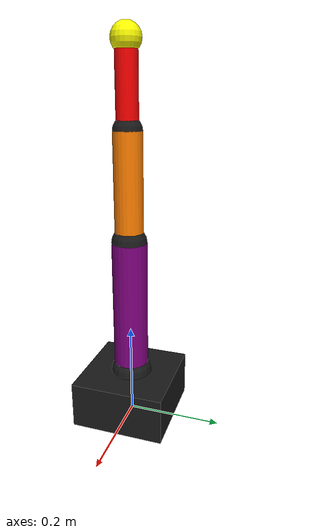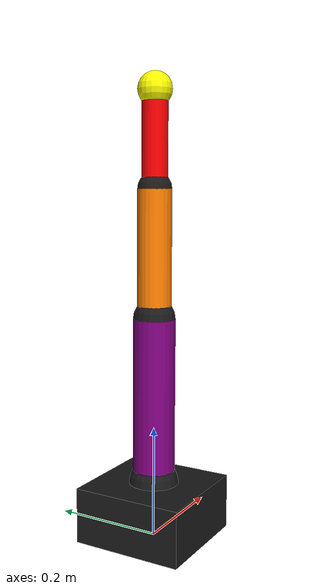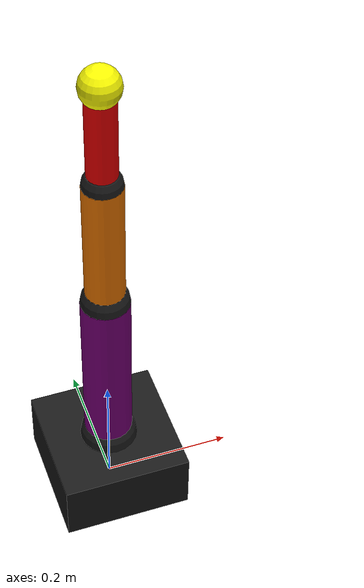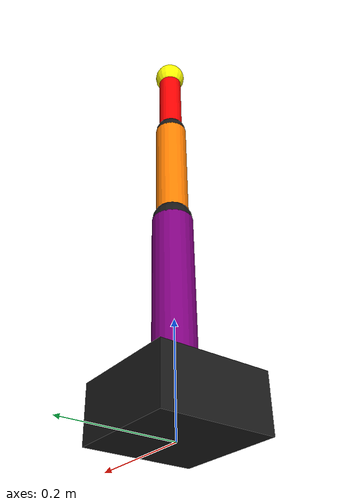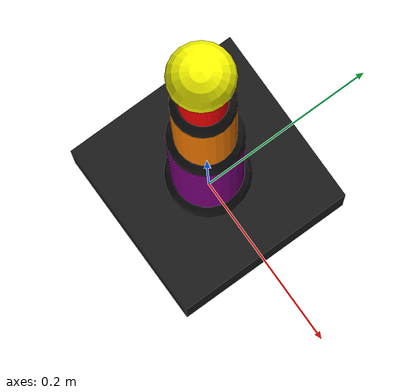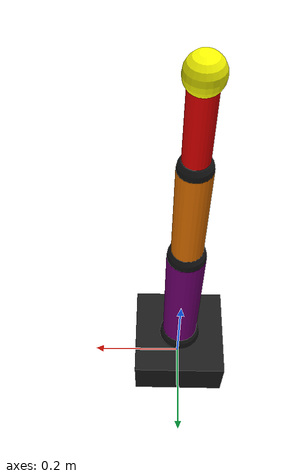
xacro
<?xml version="1.0"?>
<!--
  robot_arm.urdf.xacro
  ====================
  Main Xacro entry point for Practical 2: Standalone 3-DOF Robot Arm.
-->
<robot xmlns:xacro="http://www.ros.org/wiki/xacro" name="robot_arm">

    <xacro:include filename="common_properties.xacro" />
    <xacro:include filename="robot_arm_core_standalone.xacro" />

</robot>

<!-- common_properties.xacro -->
<robot xmlns:xacro="http://www.ros.org/wiki/xacro">

    <!-- Colors -->
    <material name="grey">
        <color rgba="0.7 0.7 0.7 1"/>
    </material>
    <material name="orange">
        <color rgba="1.0 0.5 0.0 1"/>
    </material>
    <material name="black">
        <color rgba="0.1 0.1 0.1 1"/>
    </material>
    <material name="blue">
        <color rgba="0.0 0.0 0.8 1"/>
    </material>
    <material name="red">
        <color rgba="1.0 0.0 0.0 1"/>
    </material>
    <material name="green">
        <color rgba="0.0 1.0 0.0 1"/>
    </material>
    <material name="yellow">
        <color rgba="1.0 1.0 0.0 1"/>
    </material>
    <material name="purple">
        <color rgba="0.5 0.0 0.5 1"/>
    </material>

    <!-- Inertial Macros -->
    <xacro:macro name="box_inertia" params="m w h d x y z r p y_rot">
        <inertial>
            <origin xyz="${x} ${y} ${z}" rpy="${r} ${p} ${y_rot}"/>
            <mass value="${m}"/>
            <inertia ixx="${(m/12)*(h*h + d*d)}" ixy="0.0" ixz="0.0"
                     iyy="${(m/12)*(w*w + d*d)}" iyz="0.0"
                     izz="${(m/12)*(w*w + h*h)}"/>
        </inertial>
    </xacro:macro>

    <xacro:macro name="cylinder_inertia" params="m r h x y z roll pitch yaw">
        <inertial>
            <origin xyz="${x} ${y} ${z}" rpy="${roll} ${pitch} ${yaw}"/>
            <mass value="${m}"/>
            <inertia ixx="${(m/12)*(3*r*r + h*h)}" ixy="0.0" ixz="0.0"
                     iyy="${(m/12)*(3*r*r + h*h)}" iyz="0.0"
                     izz="${(m/2)*(r*r)}"/>
        </inertial>
    </xacro:macro>

    <xacro:macro name="sphere_inertia" params="m r x y z roll pitch yaw">
        <inertial>
            <origin xyz="${x} ${y} ${z}" rpy="${roll} ${pitch} ${yaw}"/>
            <mass value="${m}"/>
            <inertia ixx="${(2*m/5)*(r*r)}" ixy="0.0" ixz="0.0"
                     iyy="${(2*m/5)*(r*r)}" iyz="0.0"
                     izz="${(2*m/5)*(r*r)}"/>
        </inertial>
    </xacro:macro>

</robot>

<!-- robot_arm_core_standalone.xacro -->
<robot xmlns:xacro="http://www.ros.org/wiki/xacro">

    <!-- Fixed world frame so the arm stands alone in RViz -->
    <link name="world"/>
    <joint name="world_arm_base_joint" type="fixed">
        <parent link="world"/>
        <child link="arm_base_link"/>
        <origin xyz="0 0 0" rpy="0 0 0"/>
    </joint>

    <link name="arm_base_link">
        <visual>
            <origin xyz="0 0 0.05" rpy="0 0 0"/>
            <geometry>
                <box size="0.2 0.2 0.1"/>
            </geometry>
            <material name="black"/>
        </visual>
        <collision>
            <origin xyz="0 0 0.05" rpy="0 0 0"/>
            <geometry>
                <box size="0.2 0.2 0.1"/>
            </geometry>
        </collision>
        <xacro:box_inertia m="1.0" w="0.2" h="0.2" d="0.1"
                           x="0" y="0" z="0.05"
                           r="0" p="0" y_rot="0"/>
    </link>

    <joint name="joint_1" type="revolute">
        <parent link="arm_base_link"/>
        <child link="link_1"/>
        <origin xyz="0 0 0.1" rpy="0 0 0"/>
        <axis xyz="0 0 1"/>
        <limit lower="-3.14159" upper="3.14159" effort="100.0" velocity="1.0"/>
    </joint>

    <link name="link_1">
        <visual>
            <origin xyz="0 0 0.15" rpy="0 0 0"/>
            <geometry>
                <cylinder radius="0.0375" length="0.3"/>
            </geometry>
            <material name="purple"/>
        </visual>
        <collision>
            <origin xyz="0 0 0.15" rpy="0 0 0"/>
            <geometry>
                <cylinder radius="0.0375" length="0.3"/>
            </geometry>
        </collision>
        <xacro:cylinder_inertia m="0.5" r="0.0375" h="0.3"
                                x="0" y="0" z="0.15"
                                roll="0" pitch="0" yaw="0"/>
    </link>

    <!-- Joint sphere visual (black ball at joint 1) -->
    <link name="link_1_sphere">
        <visual>
            <origin xyz="0 0 0" rpy="0 0 0"/>
            <geometry><sphere radius="0.045"/></geometry>
            <material name="black"/>
        </visual>
    </link>
    <joint name="link_1_sphere_joint" type="fixed">
        <parent link="link_1"/>
        <child link="link_1_sphere"/>
        <origin xyz="0 0 0" rpy="0 0 0"/>
    </joint>

    <joint name="joint_2" type="revolute">
        <parent link="link_1"/>
        <child link="link_2"/>
        <origin xyz="0 0 0.3" rpy="0 0 0"/>
        <axis xyz="0 1 0"/>
        <limit lower="-1.5708" upper="1.5708" effort="100.0" velocity="1.0"/>
    </joint>

    <!-- ═══════════════════════════════════════════════
         LINK 2 — Forearm (orange cylinder)
         Change: radius="0.03"   length="0.225"
         ═══════════════════════════════════════════════ -->
    <link name="link_2">
        <visual>
            <origin xyz="0 0 0.1125" rpy="0 0 0"/>
            <geometry>
                <cylinder radius="0.03" length="0.225"/>
            </geometry>
            <material name="orange"/>
        </visual>
        <collision>
            <origin xyz="0 0 0.1125" rpy="0 0 0"/>
            <geometry>
                <cylinder radius="0.03" length="0.225"/>
            </geometry>
        </collision>
        <xacro:cylinder_inertia m="0.4" r="0.03" h="0.225"
                                x="0" y="0" z="0.1125"
                                roll="0" pitch="0" yaw="0"/>
    </link>

    <link name="link_2_sphere">
        <visual>
            <origin xyz="0 0 0" rpy="0 0 0"/>
            <geometry><sphere radius="0.0375"/></geometry>
            <material name="black"/>
        </visual>
    </link>
    <joint name="link_2_sphere_joint" type="fixed">
        <parent link="link_2"/>
        <child link="link_2_sphere"/>
        <origin xyz="0 0 0" rpy="0 0 0"/>
    </joint>

    <!-- ═══════════════════════════════════════════════
         JOINT 3 — Pitch (wrist, tilts end-effector)
         ═══════════════════════════════════════════════ -->
    <joint name="joint_3" type="revolute">
        <parent link="link_2"/>
        <child link="link_3"/>
        <origin xyz="0 0 0.225" rpy="0 0 0"/>
        <axis xyz="0 1 0"/>
        <limit lower="-1.5708" upper="1.5708" effort="100.0" velocity="1.0"/>
    </joint>

    <!-- ═══════════════════════════════════════════════
         LINK 3 — Wrist (red cylinder)
         Change: radius="0.0225"  length="0.15"
         ═══════════════════════════════════════════════ -->
    <link name="link_3">
        <visual>
            <origin xyz="0 0 0.075" rpy="0 0 0"/>
            <geometry>
                <cylinder radius="0.0225" length="0.15"/>
            </geometry>
            <material name="red"/>
        </visual>
        <collision>
            <origin xyz="0 0 0.075" rpy="0 0 0"/>
            <geometry>
                <cylinder radius="0.0225" length="0.15"/>
            </geometry>
        </collision>
        <xacro:cylinder_inertia m="0.2" r="0.0225" h="0.15"
                                x="0" y="0" z="0.075"
                                roll="0" pitch="0" yaw="0"/>
    </link>

    <link name="link_3_sphere">
        <visual>
            <origin xyz="0 0 0" rpy="0 0 0"/>
            <geometry><sphere radius="0.03"/></geometry>
            <material name="black"/>
        </visual>
    </link>
    <joint name="link_3_sphere_joint" type="fixed">
        <parent link="link_3"/>
        <child link="link_3_sphere"/>
        <origin xyz="0 0 0" rpy="0 0 0"/>
    </joint>

    <joint name="end_effector_joint" type="fixed">
        <parent link="link_3"/>
        <child link="end_effector_link"/>
        <origin xyz="0 0 0.15" rpy="0 0 0"/>
    </joint>

    <link name="end_effector_link">
        <visual>
            <origin xyz="0 0 0.015" rpy="0 0 0"/>
            <geometry>
                <sphere radius="0.03"/>              <!-- change radius to resize tip -->
            </geometry>
            <material name="yellow"/>
        </visual>
        <collision>
            <origin xyz="0 0 0.015" rpy="0 0 0"/>
            <geometry><sphere radius="0.03"/></geometry>
        </collision>
        <xacro:sphere_inertia m="0.1" r="0.03"
                              x="0" y="0" z="0.015"
                              roll="0" pitch="0" yaw="0"/>
    </link>

</robot>
